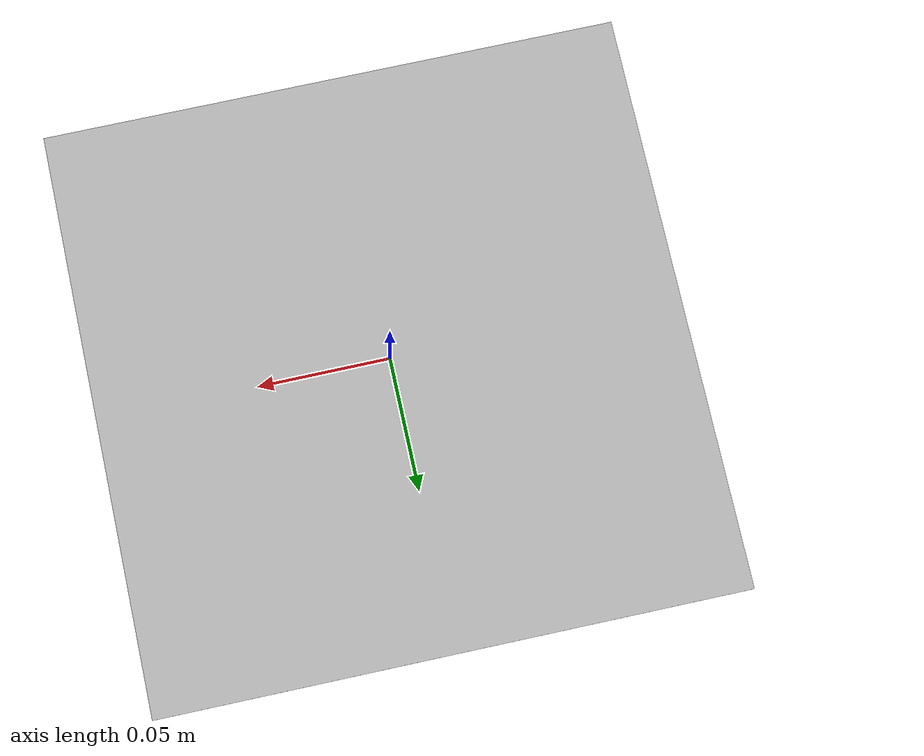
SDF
<?xml version="1.0"?>
<sdf version="1.5">
    <model name="aruco_100">
        <static>true</static>
        <link name="marker_100_link">
            <pose>0 0 1e-3 0 0 1.5707963267948966</pose>
            <visual name="visual_marker_100">
                <cast_shadows>false</cast_shadows>
                <geometry>
                    <box>
                        <size>0.22 0.22 1e-3</size>
                    </box>
                </geometry>
                <material>
                    <script>
                        <uri>model://aruco_100/materials/scripts</uri>
                        <uri>model://aruco_100/materials/textures</uri>
                        <name>aruco/marker_100</name>
                    </script>
                </material>
            </visual>
        </link>
    </model>
</sdf>
